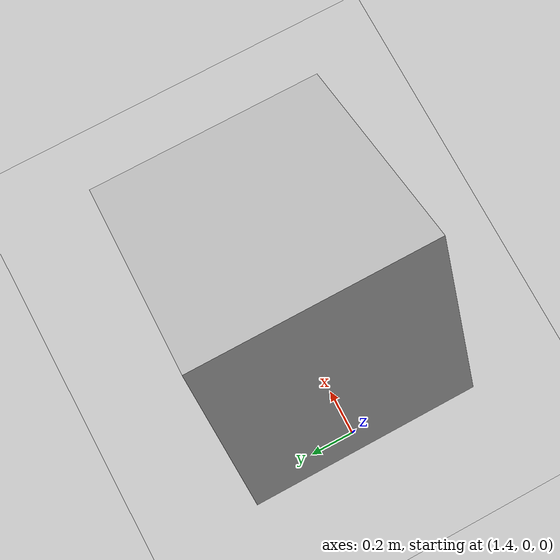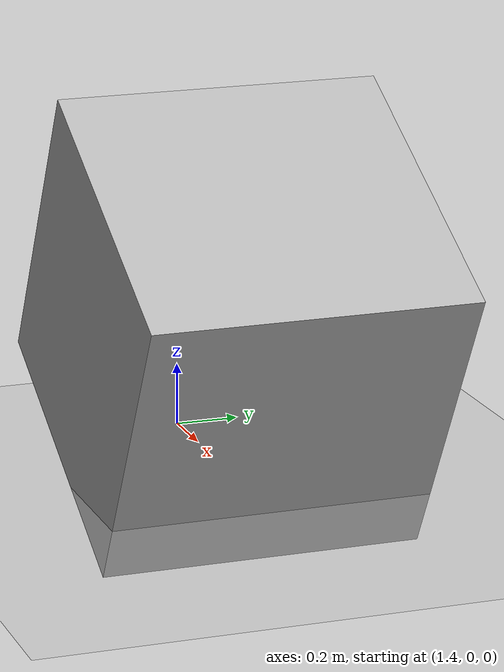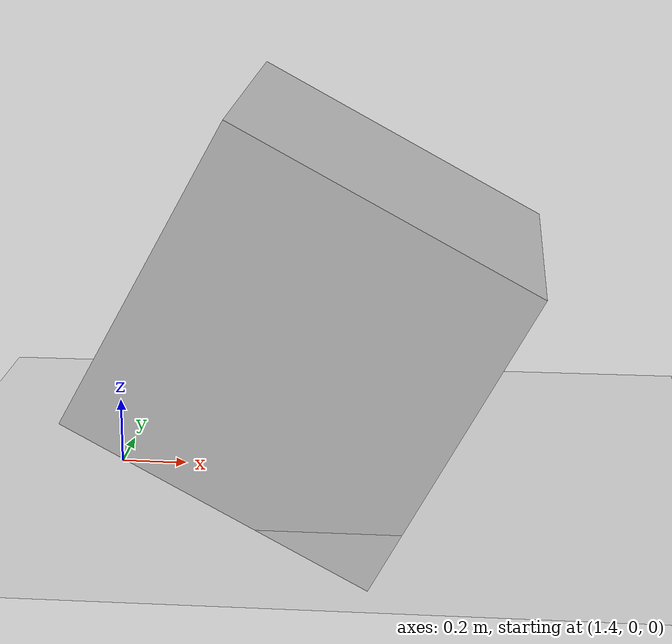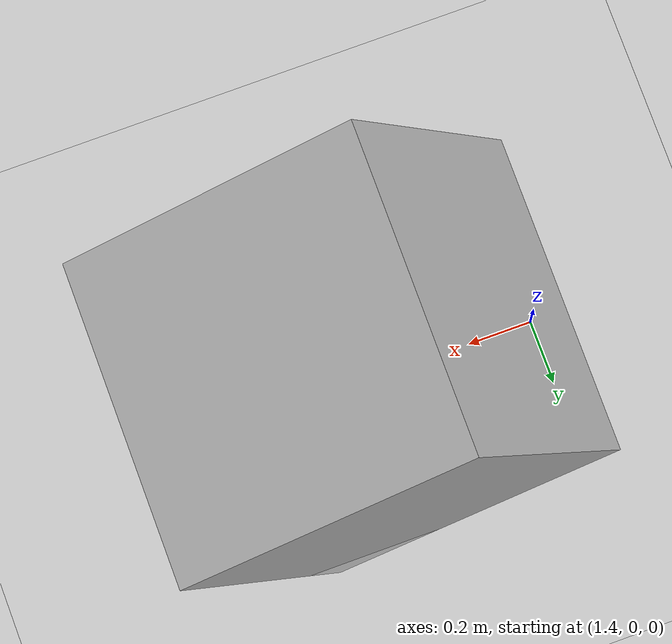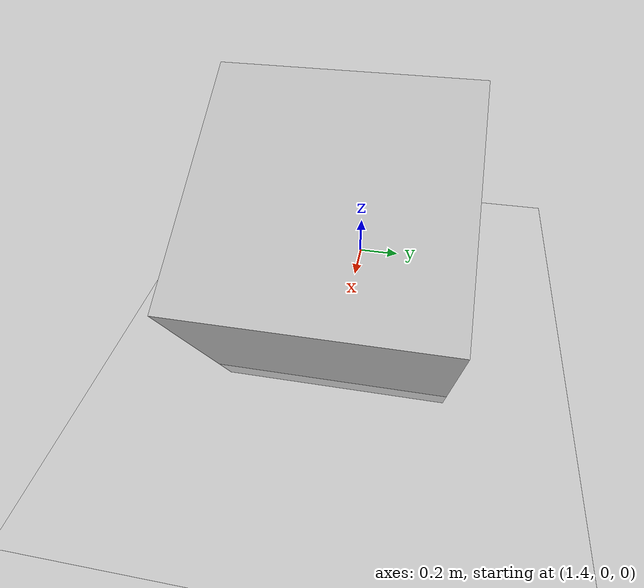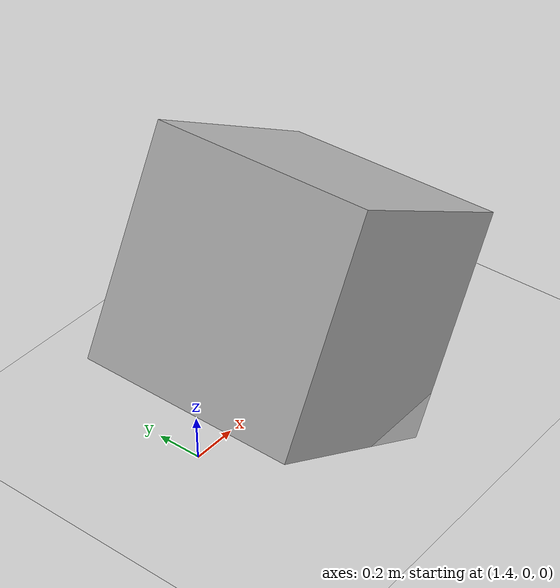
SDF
<!-- /* Copyright 2019 The MathWorks, Inc. -->
<?xml version="1.0"?>
<sdf version="1.4">
  <world name="default">
    <include>
      <uri>model://ground_plane</uri>
    </include>

    <include>
      <uri>model://sun</uri>
    </include>

   <model name ='unit_box'>
    <pose>2 0 .5 0 0.5 0</pose>
    <link name ='link'>
      <pose>0 0 0 0 0 0</pose>
      <collision name ='collision'>
        <geometry>
          <box><size>1 1 1</size></box>
        </geometry>
      </collision>
      <visual name ='visual'>
        <geometry>
          <box><size>1 1 1</size></box>
        </geometry>
      </visual>
    </link>

      <joint type="revolute" name="joint">
	<pose>0 0 0 0 0 0</pose>
        <child>link</child>
        <parent>link</parent>
        <axis>
          <xyz>0 1 0</xyz>
        </axis>
      </joint>

  </model>
  </world>
</sdf>
